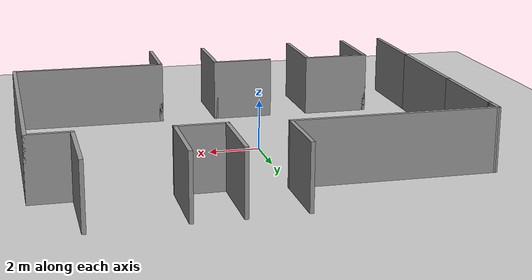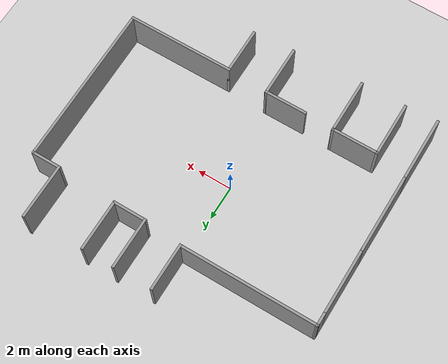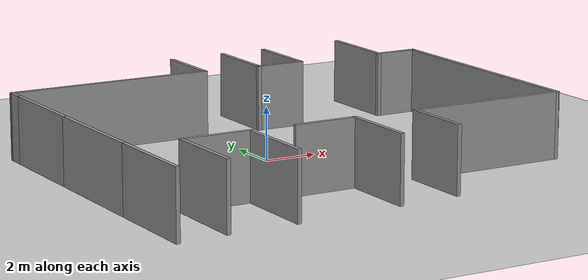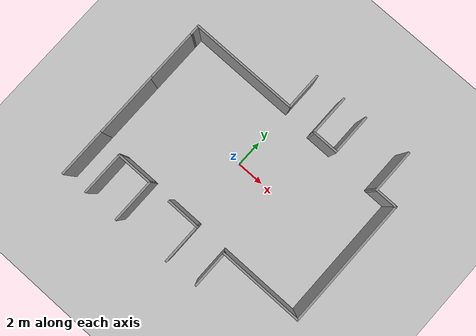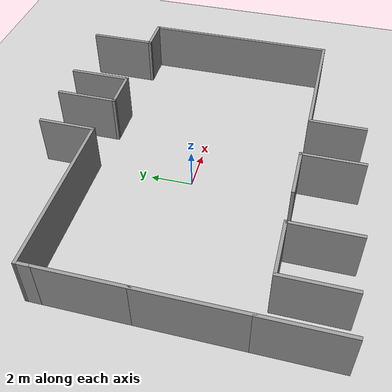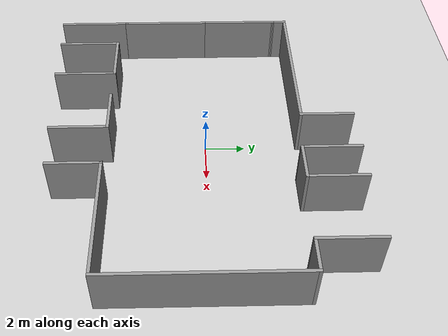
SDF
<sdf version="1.6">
 <world name="default">
  <light name="sun" type="directional">
   <pose>0 0 10 0 -0 0</pose>
   <diffuse>0.8 0.8 0.8 1</diffuse>
   <specular>0.2 0.2 0.2 1</specular>
   <attenuation>
    <range>1000</range>
    <constant>0.9</constant>
    <linear>0.01</linear>
    <quadratic>0.001</quadratic>
   </attenuation>
   <direction>-0.5 0.1 -0.9</direction>
  </light>
  <model name="ground_plane">
   <static>true</static>
   <link name="link">
    <collision name="collision">
     <geometry><plane><normal>0 0 1</normal><size>100 100</size></plane></geometry>
    </collision>
    <visual name="visual">
     <geometry><plane><normal>0 0 1</normal><size>100 100</size></plane></geometry>
     <material>
      <script><uri>file://media/materials/scripts/gazebo.material</uri><name>Gazebo/GroundPlane</name></script>
     </material>
    </visual>
   </link>
  </model>
  <gravity>0 0 -9.8</gravity>
  <magnetic_field>6e-06 2.3e-05 -4.2e-05</magnetic_field>
  <atmosphere type="adiabatic"/>
  <physics name="default_physics" default="0" type="ode">
   <max_step_size>0.001</max_step_size>
   <real_time_factor>1</real_time_factor>
   <real_time_update_rate>1000</real_time_update_rate>
  </physics>
  <scene><ambient>0.4 0.4 0.4 1</ambient><background>0.7 0.7 0.7 1</background><shadows>1</shadows></scene>
  <audio><device>default</device></audio>
  <spherical_coordinates>
   <surface_model>EARTH_WGS84</surface_model>
   <latitude_deg>0</latitude_deg>
   <longitude_deg>0</longitude_deg>
   <elevation>0</elevation>
   <heading_deg>0</heading_deg>
  </spherical_coordinates>
  <model name="7floor">
   <pose>0.697819 -0.241747 0 0 -0 0</pose>
   <link name="Wall_10">
    <collision name="Wall_10_Collision">
     <geometry><box><size>2.75 0.15 2.5</size></box></geometry>
     <pose>0 0 1.25 0 -0 0</pose>
    </collision>
    <visual name="Wall_10_Visual">
     <pose>0 0 1.25 0 -0 0</pose>
     <geometry><box><size>2.75 0.15 2.5</size></box></geometry>
     <material>
      <script><uri>file://media/materials/scripts/gazebo.material</uri><name>Gazebo/Grey</name></script>
      <ambient>1 1 1 1</ambient>
     </material>
     <meta><layer>0</layer></meta>
    </visual>
    <pose>-5.3496 -4.5359 0 0 -0 0</pose>
   </link>
   <link name="Wall_11">
    <collision name="Wall_11_Collision">
     <geometry><box><size>3.25 0.15 2.5</size></box></geometry>
     <pose>0 0 1.25 0 -0 0</pose>
    </collision>
    <visual name="Wall_11_Visual">
     <pose>0 0 1.25 0 -0 0</pose>
     <geometry><box><size>3.25 0.15 2.5</size></box></geometry>
     <material>
      <script><uri>file://media/materials/scripts/gazebo.material</uri><name>Gazebo/Grey</name></script>
      <ambient>1 1 1 1</ambient>
     </material>
     <meta><layer>0</layer></meta>
    </visual>
    <pose>-4.0496 -6.0859 0 0 -0 -1.5708</pose>
   </link>
   <link name="Wall_13">
    <collision name="Wall_13_Collision">
     <geometry><box><size>2.5 0.15 2.5</size></box></geometry>
     <pose>0 0 1.25 0 -0 0</pose>
    </collision>
    <visual name="Wall_13_Visual">
     <pose>0 0 1.25 0 -0 0</pose>
     <geometry><box><size>2.5 0.15 2.5</size></box></geometry>
     <material>
      <script><uri>file://media/materials/scripts/gazebo.material</uri><name>Gazebo/Grey</name></script>
      <ambient>1 1 1 1</ambient>
     </material>
     <meta><layer>0</layer></meta>
    </visual>
    <pose>-1.14585 -4.60173 0 0 -0 0</pose>
   </link>
   <link name="Wall_14">
    <collision name="Wall_14_Collision">
     <geometry><box><size>3 0.15 2.5</size></box></geometry>
     <pose>0 0 1.25 0 -0 0</pose>
    </collision>
    <visual name="Wall_14_Visual">
     <pose>0 0 1.25 0 -0 0</pose>
     <geometry><box><size>3 0.15 2.5</size></box></geometry>
     <material>
      <script><uri>file://media/materials/scripts/gazebo.material</uri><name>Gazebo/Grey</name></script>
      <ambient>1 1 1 1</ambient>
     </material>
     <meta><layer>0</layer></meta>
    </visual>
    <pose>0.029151 -6.02673 0 0 -0 -1.5708</pose>
   </link>
   <link name="Wall_16">
    <collision name="Wall_16_Collision">
     <geometry><box><size>2.75 0.15 2.5</size></box></geometry>
     <pose>0 0 1.25 0 -0 0</pose>
    </collision>
    <visual name="Wall_16_Visual">
     <pose>0 0 1.25 0 -0 0</pose>
     <geometry><box><size>2.75 0.15 2.5</size></box></geometry>
     <material>
      <script><uri>file://media/materials/scripts/gazebo.material</uri><name>Gazebo/Grey</name></script>
      <ambient>1 1 1 1</ambient>
     </material>
     <meta><layer>0</layer></meta>
    </visual>
    <pose>2.41245 -6.01225 0 0 -0 1.5708</pose>
   </link>
   <link name="Wall_17">
    <collision name="Wall_17_Collision">
     <geometry><box><size>6.25 0.15 2.5</size></box></geometry>
     <pose>0 0 1.25 0 -0 0</pose>
    </collision>
    <visual name="Wall_17_Visual">
     <pose>0 0 1.25 0 -0 0</pose>
     <geometry><box><size>6.25 0.15 2.5</size></box></geometry>
     <material>
      <script><uri>file://media/materials/scripts/gazebo.material</uri><name>Gazebo/Grey</name></script>
      <ambient>1 1 1 1</ambient>
     </material>
     <meta><layer>0</layer></meta>
    </visual>
    <pose>5.46245 -4.71225 0 0 -0 0</pose>
   </link>
   <link name="Wall_18">
    <collision name="Wall_18_Collision">
     <geometry><box><size>9.5 0.15 2.5</size></box></geometry>
     <pose>0 0 1.25 0 -0 0</pose>
    </collision>
    <visual name="Wall_18_Visual">
     <pose>0 0 1.25 0 -0 0</pose>
     <geometry><box><size>9.5 0.15 2.5</size></box></geometry>
     <material>
      <script><uri>file://media/materials/scripts/gazebo.material</uri><name>Gazebo/Grey</name></script>
      <ambient>1 1 1 1</ambient>
     </material>
     <meta><layer>0</layer></meta>
    </visual>
    <pose>8.51245 -0.037254 0 0 -0 1.5708</pose>
   </link>
   <link name="Wall_19">
    <collision name="Wall_19_Collision">
     <geometry><box><size>1.75 0.15 2.5</size></box></geometry>
     <pose>0 0 1.25 0 -0 0</pose>
    </collision>
    <visual name="Wall_19_Visual">
     <pose>0 0 1.25 0 -0 0</pose>
     <geometry><box><size>1.75 0.15 2.5</size></box></geometry>
     <material>
      <script><uri>file://media/materials/scripts/gazebo.material</uri><name>Gazebo/Grey</name></script>
      <ambient>1 1 1 1</ambient>
     </material>
     <meta><layer>0</layer></meta>
    </visual>
    <pose>7.71245 4.63775 0 0 -0 3.14159</pose>
   </link>
   <link name="Wall_2">
    <collision name="Wall_2_Collision">
     <geometry><box><size>4.75 0.15 2.5</size></box></geometry>
     <pose>0 0 1.25 0 -0 0</pose>
    </collision>
    <visual name="Wall_2_Visual">
     <pose>0 0 1.25 0 -0 0</pose>
     <geometry><box><size>4.75 0.15 2.5</size></box></geometry>
     <material>
      <script><uri>file://media/materials/scripts/gazebo.material</uri><name>Gazebo/Grey</name></script>
      <ambient>1 1 1 1</ambient>
     </material>
     <meta><layer>0</layer></meta>
    </visual>
    <pose>-8.50965 -1.83774 0 0 -0 1.5708</pose>
   </link>
   <link name="Wall_20">
    <collision name="Wall_20_Collision">
     <geometry><box><size>3.25 0.15 2.5</size></box></geometry>
     <pose>0 0 1.25 0 -0 0</pose>
    </collision>
    <visual name="Wall_20_Visual">
     <pose>0 0 1.25 0 -0 0</pose>
     <geometry><box><size>3.25 0.15 2.5</size></box></geometry>
     <material>
      <script><uri>file://media/materials/scripts/gazebo.material</uri><name>Gazebo/Grey</name></script>
      <ambient>1 1 1 1</ambient>
     </material>
     <meta><layer>0</layer></meta>
    </visual>
    <pose>6.91245 6.18775 0 0 -0 1.5708</pose>
   </link>
   <link name="Wall_22">
    <collision name="Wall_22_Collision">
     <geometry><box><size>3 0.15 2.5</size></box></geometry>
     <pose>0 0 1.25 0 -0 0</pose>
    </collision>
    <visual name="Wall_22_Visual">
     <pose>0 0 1.25 0 -0 0</pose>
     <geometry><box><size>3 0.15 2.5</size></box></geometry>
     <material>
      <script><uri>file://media/materials/scripts/gazebo.material</uri><name>Gazebo/Grey</name></script>
      <ambient>1 1 1 1</ambient>
     </material>
     <meta><layer>0</layer></meta>
    </visual>
    <pose>3.42384 6.19085 0 0 -0 -1.5708</pose>
   </link>
   <link name="Wall_23">
    <collision name="Wall_23_Collision">
     <geometry><box><size>2 0.15 2.5</size></box></geometry>
     <pose>0 0 1.25 0 -0 0</pose>
    </collision>
    <visual name="Wall_23_Visual">
     <pose>0 0 1.25 0 -0 0</pose>
     <geometry><box><size>2 0.15 2.5</size></box></geometry>
     <material>
      <script><uri>file://media/materials/scripts/gazebo.material</uri><name>Gazebo/Grey</name></script>
      <ambient>1 1 1 1</ambient>
     </material>
     <meta><layer>0</layer></meta>
    </visual>
    <pose>2.49884 4.76585 0 0 -0 3.14159</pose>
   </link>
   <link name="Wall_24">
    <collision name="Wall_24_Collision">
     <geometry><box><size>3 0.15 2.5</size></box></geometry>
     <pose>0 0 1.25 0 -0 0</pose>
    </collision>
    <visual name="Wall_24_Visual">
     <pose>0 0 1.25 0 -0 0</pose>
     <geometry><box><size>3 0.15 2.5</size></box></geometry>
     <material>
      <script><uri>file://media/materials/scripts/gazebo.material</uri><name>Gazebo/Grey</name></script>
      <ambient>1 1 1 1</ambient>
     </material>
     <meta><layer>0</layer></meta>
    </visual>
    <pose>1.57384 6.19085 0 0 -0 1.5708</pose>
   </link>
   <link name="Wall_26">
    <collision name="Wall_26_Collision">
     <geometry><box><size>2.75 0.15 2.5</size></box></geometry>
     <pose>0 0 1.25 0 -0 0</pose>
    </collision>
    <visual name="Wall_26_Visual">
     <pose>0 0 1.25 0 -0 0</pose>
     <geometry><box><size>2.75 0.15 2.5</size></box></geometry>
     <material>
      <script><uri>file://media/materials/scripts/gazebo.material</uri><name>Gazebo/Grey</name></script>
      <ambient>1 1 1 1</ambient>
     </material>
     <meta><layer>0</layer></meta>
    </visual>
    <pose>-0.66217 6.2754 0 0 -0 -1.5708</pose>
   </link>
   <link name="Wall_27">
    <collision name="Wall_27_Collision">
     <geometry><box><size>8 0.15 2.5</size></box></geometry>
     <pose>0 0 1.25 0 -0 0</pose>
    </collision>
    <visual name="Wall_27_Visual">
     <pose>0 0 1.25 0 -0 0</pose>
     <geometry><box><size>8 0.15 2.5</size></box></geometry>
     <material>
      <script><uri>file://media/materials/scripts/gazebo.material</uri><name>Gazebo/Grey</name></script>
      <ambient>1 1 1 1</ambient>
     </material>
     <meta><layer>0</layer></meta>
    </visual>
    <pose>-4.58717 4.9754 0 0 -0 3.14159</pose>
   </link>
   <link name="Wall_28">
    <collision name="Wall_28_Collision">
     <geometry><box><size>0.813148 0.15 2.5</size></box></geometry>
     <pose>0 0 1.25 0 -0 0</pose>
    </collision>
    <visual name="Wall_28_Visual">
     <pose>0 0 1.25 0 -0 0</pose>
     <geometry><box><size>0.813148 0.15 2.5</size></box></geometry>
     <material>
      <script><uri>file://media/materials/scripts/gazebo.material</uri><name>Gazebo/Grey</name></script>
      <ambient>1 1 1 1</ambient>
     </material>
     <meta><layer>0</layer></meta>
    </visual>
    <pose>-8.51091 4.64383 0 0 -0 -1.56699</pose>
   </link>
   <link name="Wall_3">
    <collision name="Wall_3_Collision">
     <geometry><box><size>4 0.15 2.5</size></box></geometry>
     <pose>0 0 1.25 0 -0 0</pose>
    </collision>
    <visual name="Wall_3_Visual">
     <pose>0 0 1.25 0 -0 0</pose>
     <geometry><box><size>4 0.15 2.5</size></box></geometry>
     <material>
      <script><uri>file://media/materials/scripts/gazebo.material</uri><name>Gazebo/Grey</name></script>
      <ambient>1 1 1 1</ambient>
     </material>
     <meta><layer>0</layer></meta>
    </visual>
    <pose>-8.50965 2.38726 0 0 -0 1.5708</pose>
   </link>
   <link name="Wall_7">
    <collision name="Wall_7_Collision">
     <geometry><box><size>3.75 0.15 2.5</size></box></geometry>
     <pose>0 0 1.25 0 -0 0</pose>
    </collision>
    <visual name="Wall_7_Visual">
     <pose>0 0 1.25 0 -0 0</pose>
     <geometry><box><size>3.75 0.15 2.5</size></box></geometry>
     <material>
      <script><uri>file://media/materials/scripts/gazebo.material</uri><name>Gazebo/Grey</name></script>
      <ambient>1 1 1 1</ambient>
     </material>
     <meta><layer>0</layer></meta>
    </visual>
    <pose>-8.50965 -5.93774 0 0 -0 -1.5708</pose>
   </link>
   <link name="Wall_9">
    <collision name="Wall_9_Collision">
     <geometry><box><size>3.25 0.15 2.5</size></box></geometry>
     <pose>0 0 1.25 0 -0 0</pose>
    </collision>
    <visual name="Wall_9_Visual">
     <pose>0 0 1.25 0 -0 0</pose>
     <geometry><box><size>3.25 0.15 2.5</size></box></geometry>
     <material>
      <script><uri>file://media/materials/scripts/gazebo.material</uri><name>Gazebo/Grey</name></script>
      <ambient>1 1 1 1</ambient>
     </material>
     <meta><layer>0</layer></meta>
    </visual>
    <pose>-6.6496 -6.0859 0 0 -0 1.5708</pose>
   </link>
   <static>1</static>
  </model>
 </world>
</sdf>
